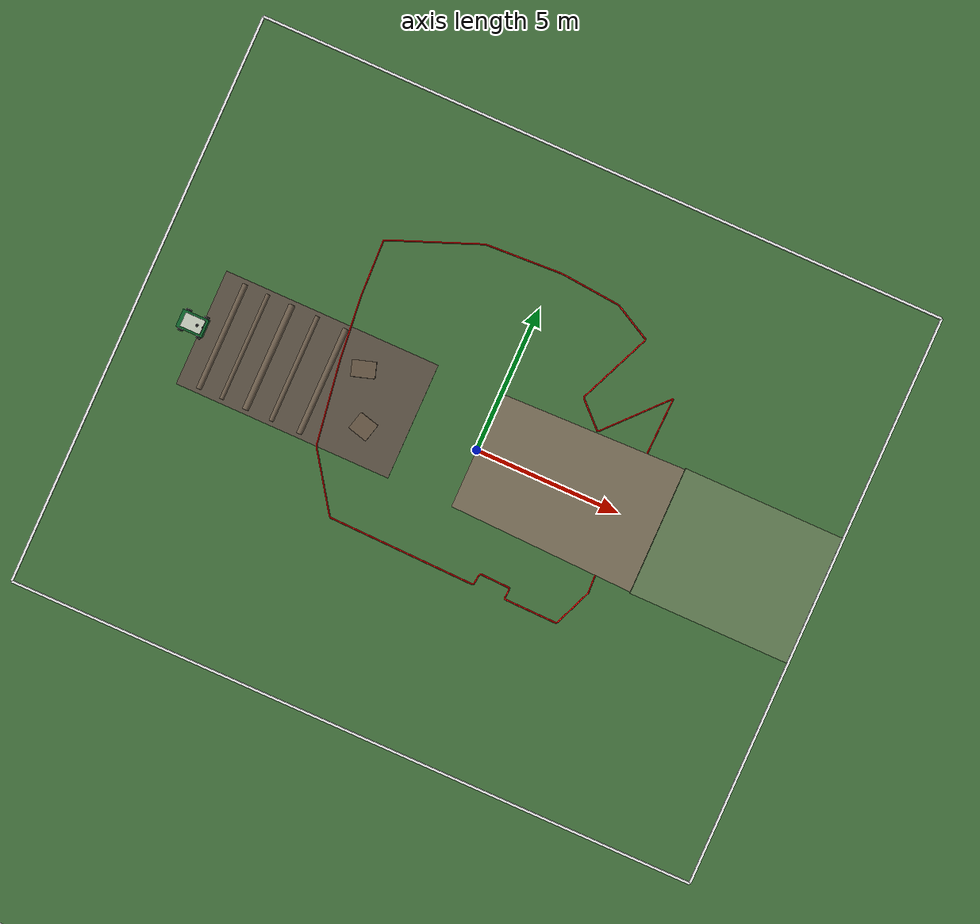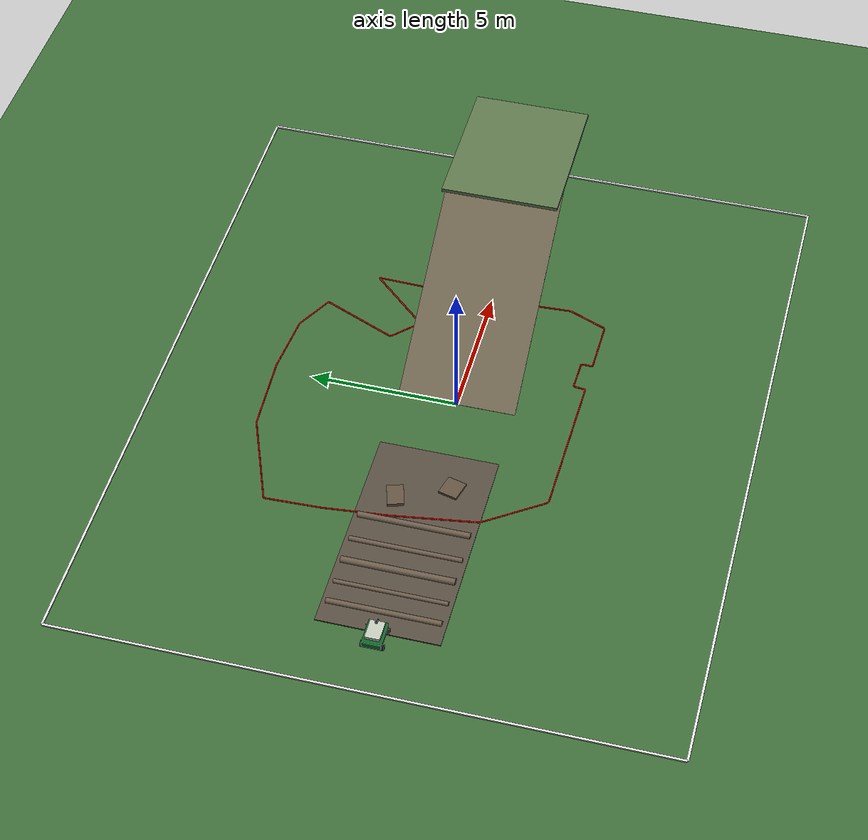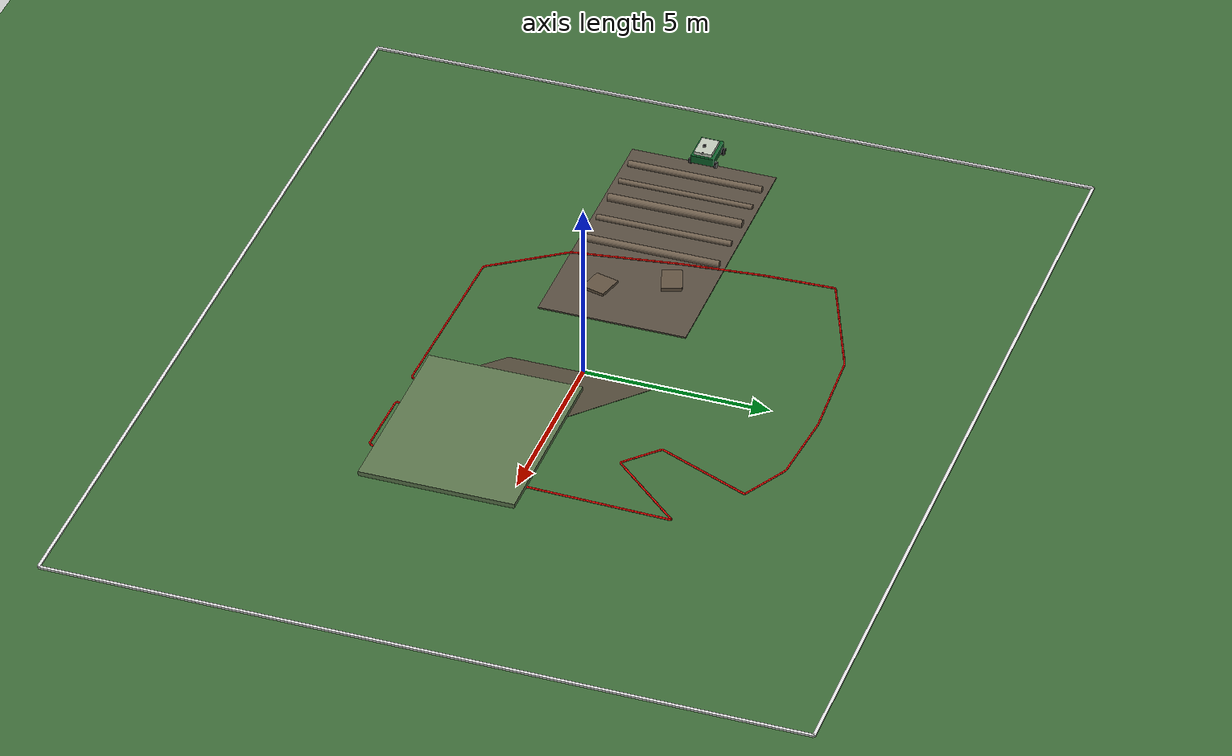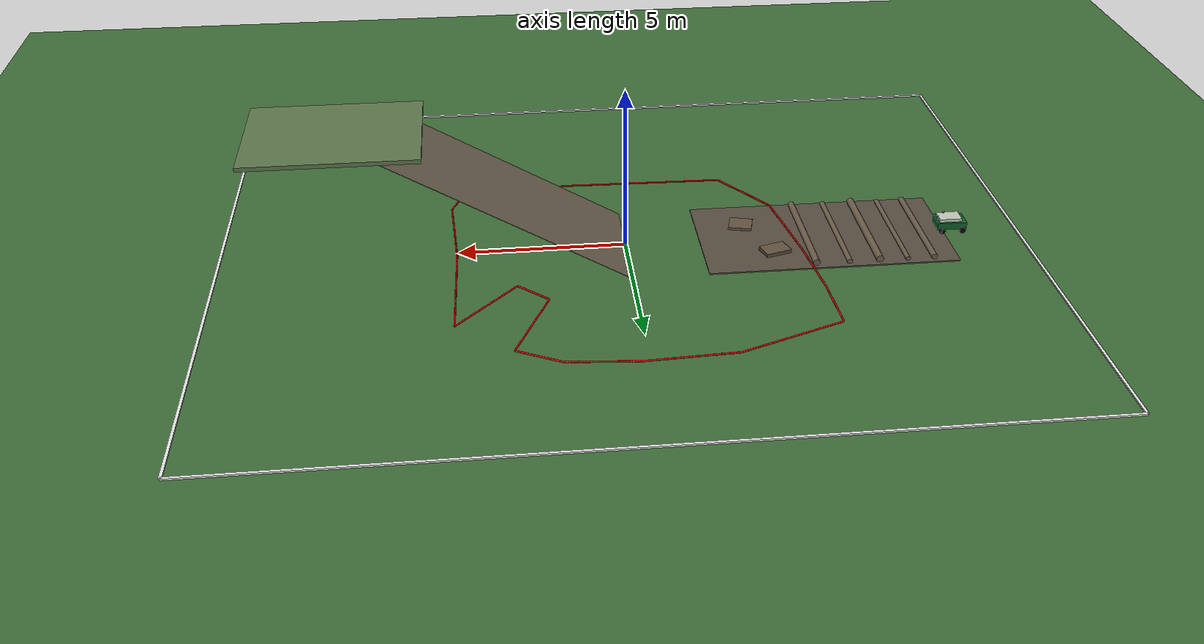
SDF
<?xml version="1.0"?>
<sdf version="1.6">
  <world name="mower_slope_bumpy">
    <gravity>0 0 -9.8</gravity>
    <magnetic_field>6e-06 2.3e-05 -4.2e-05</magnetic_field>
    <atmosphere type="adiabatic"/>

    <physics name="default_physics" default="0" type="ode">
      <max_step_size>0.001</max_step_size>
      <real_time_factor>1.0</real_time_factor>
      <real_time_update_rate>1000</real_time_update_rate>
    </physics>

    <scene>
      <ambient>0.65 0.65 0.65 1</ambient>
      <background>0.85 0.90 0.96 1</background>
      <shadows>true</shadows>
    </scene>

    <light name="sun" type="directional">
      <cast_shadows>true</cast_shadows>
      <pose>0 0 10 0 0 0</pose>
      <diffuse>1.0 1.0 1.0 1</diffuse>
      <specular>0.35 0.35 0.35 1</specular>
      <attenuation>
        <range>1000</range>
        <constant>0.9</constant>
        <linear>0.01</linear>
        <quadratic>0.001</quadratic>
      </attenuation>
      <direction>-0.5 0.1 -0.9</direction>
    </light>

    <model name="ground_plane">
      <static>true</static>
      <link name="link">
        <collision name="collision">
          <geometry>
            <plane>
              <normal>0 0 1</normal>
              <size>50 40</size>
            </plane>
          </geometry>
          <surface>
            <friction>
              <ode>
                <mu>1.2</mu>
                <mu2>1.2</mu2>
              </ode>
            </friction>
          </surface>
        </collision>
        <visual name="visual">
          <geometry>
            <plane>
              <normal>0 0 1</normal>
              <size>50 40</size>
            </plane>
          </geometry>
          <material>
            <ambient>0.24 0.42 0.22 1</ambient>
            <diffuse>0.24 0.42 0.22 1</diffuse>
          </material>
        </visual>
      </link>
    </model>

    <model name="bumpy_road">
      <static>true</static>
      <pose>-6 0 0 0 0 0</pose>
      <link name="road_base">
        <collision name="collision">
          <geometry>
            <box>
              <size>7.5 4.0 0.04</size>
            </box>
          </geometry>
        </collision>
        <visual name="visual">
          <geometry>
            <box>
              <size>7.5 4.0 0.04</size>
            </box>
          </geometry>
          <material>
            <ambient>0.34 0.30 0.25 1</ambient>
            <diffuse>0.34 0.30 0.25 1</diffuse>
          </material>
        </visual>
      </link>
      <link name="bump_01">
        <pose>-3.0 0 0.09 1.570796 0 0</pose>
        <collision name="collision">
          <geometry>
            <cylinder>
              <radius>0.09</radius>
              <length>3.7</length>
            </cylinder>
          </geometry>
        </collision>
        <visual name="visual">
          <geometry>
            <cylinder>
              <radius>0.09</radius>
              <length>3.7</length>
            </cylinder>
          </geometry>
          <material>
            <ambient>0.42 0.36 0.29 1</ambient>
            <diffuse>0.42 0.36 0.29 1</diffuse>
          </material>
        </visual>
      </link>
      <link name="bump_02">
        <pose>-2.2 0 0.07 1.570796 0 0</pose>
        <collision name="collision">
          <geometry>
            <cylinder>
              <radius>0.07</radius>
              <length>3.7</length>
            </cylinder>
          </geometry>
        </collision>
        <visual name="visual">
          <geometry>
            <cylinder>
              <radius>0.07</radius>
              <length>3.7</length>
            </cylinder>
          </geometry>
          <material>
            <ambient>0.42 0.36 0.29 1</ambient>
            <diffuse>0.42 0.36 0.29 1</diffuse>
          </material>
        </visual>
      </link>
      <link name="bump_03">
        <pose>-1.35 0 0.11 1.570796 0 0</pose>
        <collision name="collision">
          <geometry>
            <cylinder>
              <radius>0.11</radius>
              <length>3.7</length>
            </cylinder>
          </geometry>
        </collision>
        <visual name="visual">
          <geometry>
            <cylinder>
              <radius>0.11</radius>
              <length>3.7</length>
            </cylinder>
          </geometry>
          <material>
            <ambient>0.42 0.36 0.29 1</ambient>
            <diffuse>0.42 0.36 0.29 1</diffuse>
          </material>
        </visual>
      </link>
      <link name="bump_04">
        <pose>-0.45 0 0.08 1.570796 0 0</pose>
        <collision name="collision">
          <geometry>
            <cylinder>
              <radius>0.08</radius>
              <length>3.7</length>
            </cylinder>
          </geometry>
        </collision>
        <visual name="visual">
          <geometry>
            <cylinder>
              <radius>0.08</radius>
              <length>3.7</length>
            </cylinder>
          </geometry>
          <material>
            <ambient>0.42 0.36 0.29 1</ambient>
            <diffuse>0.42 0.36 0.29 1</diffuse>
          </material>
        </visual>
      </link>
      <link name="bump_05">
        <pose>0.55 0 0.10 1.570796 0 0</pose>
        <collision name="collision">
          <geometry>
            <cylinder>
              <radius>0.10</radius>
              <length>3.7</length>
            </cylinder>
          </geometry>
        </collision>
        <visual name="visual">
          <geometry>
            <cylinder>
              <radius>0.10</radius>
              <length>3.7</length>
            </cylinder>
          </geometry>
          <material>
            <ambient>0.42 0.36 0.29 1</ambient>
            <diffuse>0.42 0.36 0.29 1</diffuse>
          </material>
        </visual>
      </link>
      <link name="small_uneven_patch_left">
        <pose>1.6 0.9 0.075 0 0 0.3</pose>
        <collision name="collision">
          <geometry>
            <box>
              <size>0.8 0.55 0.11</size>
            </box>
          </geometry>
        </collision>
        <visual name="visual">
          <geometry>
            <box>
              <size>0.8 0.55 0.11</size>
            </box>
          </geometry>
          <material>
            <ambient>0.38 0.32 0.25 1</ambient>
            <diffuse>0.38 0.32 0.25 1</diffuse>
          </material>
        </visual>
      </link>
      <link name="small_uneven_patch_right">
        <pose>2.35 -0.8 0.06 0 0 -0.25</pose>
        <collision name="collision">
          <geometry>
            <box>
              <size>0.7 0.65 0.08</size>
            </box>
          </geometry>
        </collision>
        <visual name="visual">
          <geometry>
            <box>
              <size>0.7 0.65 0.08</size>
            </box>
          </geometry>
          <material>
            <ambient>0.38 0.32 0.25 1</ambient>
            <diffuse>0.38 0.32 0.25 1</diffuse>
          </material>
        </visual>
      </link>
    </model>

    <model name="thirty_degree_slope">
      <static>true</static>
      <pose>3.464 0 1.99 0 -0.523599 0</pose>
      <link name="ramp">
        <collision name="collision">
          <geometry>
            <box>
              <size>8.0 4.0 0.01</size>
            </box>
          </geometry>
          <surface>
            <friction>
              <ode>
                <mu>1.4</mu>
                <mu2>1.4</mu2>
              </ode>
            </friction>
          </surface>
        </collision>
        <visual name="visual">
          <geometry>
            <box>
              <size>8.0 4.0 0.01</size>
            </box>
          </geometry>
          <material>
            <ambient>0.43 0.39 0.31 1</ambient>
            <diffuse>0.43 0.39 0.31 1</diffuse>
          </material>
        </visual>
      </link>
    </model>

    <model name="slope_top_platform">
      <static>true</static>
      <pose>8.3 0 4.05 0 0 0</pose>
      <link name="platform">
        <collision name="collision">
          <geometry>
            <box>
              <size>5.0 4.0 0.12</size>
            </box>
          </geometry>
          <surface>
            <friction>
              <ode>
                <mu>1.4</mu>
                <mu2>1.4</mu2>
              </ode>
            </friction>
          </surface>
        </collision>
        <visual name="visual">
          <geometry>
            <box>
              <size>5.0 4.0 0.12</size>
            </box>
          </geometry>
          <material>
            <ambient>0.36 0.46 0.30 1</ambient>
            <diffuse>0.36 0.46 0.30 1</diffuse>
          </material>
        </visual>
      </link>
    </model>

    <model name="boundary">
      <static>true</static>
      <pose>0 0 0.025 0 0 0</pose>
      <link name="north">
        <pose>0 10 0 0 0 0</pose>
        <collision name="collision">
          <geometry>
            <box>
              <size>24 0.08 0.05</size>
            </box>
          </geometry>
        </collision>
        <visual name="visual">
          <geometry>
            <box>
              <size>24 0.08 0.05</size>
            </box>
          </geometry>
          <material>
            <ambient>0.9 0.9 0.9 1</ambient>
            <diffuse>0.9 0.9 0.9 1</diffuse>
          </material>
        </visual>
      </link>
      <link name="south">
        <pose>0 -10 0 0 0 0</pose>
        <collision name="collision">
          <geometry>
            <box>
              <size>24 0.08 0.05</size>
            </box>
          </geometry>
        </collision>
        <visual name="visual">
          <geometry>
            <box>
              <size>24 0.08 0.05</size>
            </box>
          </geometry>
          <material>
            <ambient>0.9 0.9 0.9 1</ambient>
            <diffuse>0.9 0.9 0.9 1</diffuse>
          </material>
        </visual>
      </link>
      <link name="east">
        <pose>12 0 0 0 0 0</pose>
        <collision name="collision">
          <geometry>
            <box>
              <size>0.08 20 0.05</size>
            </box>
          </geometry>
        </collision>
        <visual name="visual">
          <geometry>
            <box>
              <size>0.08 20 0.05</size>
            </box>
          </geometry>
          <material>
            <ambient>0.9 0.9 0.9 1</ambient>
            <diffuse>0.9 0.9 0.9 1</diffuse>
          </material>
        </visual>
      </link>
      <link name="west">
        <pose>-12 0 0 0 0 0</pose>
        <collision name="collision">
          <geometry>
            <box>
              <size>0.08 20 0.05</size>
            </box>
          </geometry>
        </collision>
        <visual name="visual">
          <geometry>
            <box>
              <size>0.08 20 0.05</size>
            </box>
          </geometry>
          <material>
            <ambient>0.9 0.9 0.9 1</ambient>
            <diffuse>0.9 0.9 0.9 1</diffuse>
          </material>
        </visual>
      </link>
    </model>

    <include>
      <uri>model://boundary_points</uri>
      <pose>0 0 0 0 0 0</pose>
    </include>

    <include>
      <uri>model://mower_robot</uri>
      <pose>-10 0 0.14 0 0 0</pose>
    </include>
  </world>
</sdf>

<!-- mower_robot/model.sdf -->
<sdf version="1.6">
  <model name="mower_robot">
    <pose>0 0 0 0 0 0</pose>

    <link name="base_link">
      <inertial>
        <pose>-0.15 0 0 0 0 0</pose>
        <mass>20.0</mass>
        <inertia>
          <ixx>1.10</ixx>
          <ixy>0.0</ixy>
          <ixz>0.0</ixz>
          <iyy>1.65</iyy>
          <iyz>0.0</iyz>
          <izz>2.05</izz>
        </inertia>
      </inertial>
      <collision name="body_collision">
        <pose>0 0 0.08 0 0 0</pose>
        <geometry>
          <box>
            <size>0.9 0.62 0.22</size>
          </box>
        </geometry>
        <surface>
          <friction>
            <ode>
              <mu>0.8</mu>
              <mu2>0.8</mu2>
            </ode>
          </friction>
        </surface>
      </collision>
      <visual name="body_visual">
        <pose>0 0 0.08 0 0 0</pose>
        <geometry>
          <box>
            <size>0.9 0.62 0.22</size>
          </box>
        </geometry>
        <material>
          <ambient>0.05 0.28 0.12 1</ambient>
          <diffuse>0.05 0.38 0.16 1</diffuse>
          <specular>0.08 0.08 0.08 1</specular>
        </material>
      </visual>
      <visual name="top_cover">
        <pose>0.04 0 0.24 0 0 0</pose>
        <geometry>
          <box>
            <size>0.68 0.48 0.10</size>
          </box>
        </geometry>
        <material>
          <ambient>0.75 0.78 0.72 1</ambient>
          <diffuse>0.75 0.78 0.72 1</diffuse>
        </material>
      </visual>
      <visual name="cutting_disc">
        <pose>-0.05 0 -0.045 0 0 0</pose>
        <geometry>
          <cylinder>
            <radius>0.24</radius>
            <length>0.025</length>
          </cylinder>
        </geometry>
        <material>
          <ambient>0.14 0.14 0.14 1</ambient>
          <diffuse>0.16 0.16 0.16 1</diffuse>
        </material>
      </visual>
    </link>

    <link name="front_left_caster_yoke">
      <pose>0.36 0.34 -0.04 0 0 0</pose>
      <inertial>
        <mass>0.4</mass>
        <inertia>
          <ixx>0.001</ixx>
          <ixy>0.0</ixy>
          <ixz>0.0</ixz>
          <iyy>0.001</iyy>
          <iyz>0.0</iyz>
          <izz>0.001</izz>
        </inertia>
      </inertial>
      <visual name="fork_visual">
        <pose>0 0 0 0 0 0</pose>
        <geometry>
          <box>
            <size>0.06 0.10 0.12</size>
          </box>
        </geometry>
        <material>
          <ambient>0.18 0.18 0.18 1</ambient>
          <diffuse>0.22 0.22 0.22 1</diffuse>
        </material>
      </visual>
    </link>

    <link name="front_left_caster_wheel">
      <pose>0.30 0.34 -0.055 0 0 0</pose>
      <inertial>
        <mass>0.8</mass>
        <inertia>
          <ixx>0.004</ixx>
          <ixy>0.0</ixy>
          <ixz>0.0</ixz>
          <iyy>0.004</iyy>
          <iyz>0.0</iyz>
          <izz>0.007</izz>
        </inertia>
      </inertial>
      <collision name="collision">
        <pose>0 0 0 -1.5708 0 0</pose>
        <geometry>
          <cylinder>
            <radius>0.085</radius>
            <length>0.06</length>
          </cylinder>
        </geometry>
        <surface>
          <friction>
            <ode>
              <mu>1.0</mu>
              <mu2>1.0</mu2>
              <slip1>0.3</slip1>
              <slip2>0.3</slip2>
            </ode>
          </friction>
        </surface>
      </collision>
      <visual name="visual">
        <pose>0 0 0 -1.5708 0 0</pose>
        <geometry>
          <cylinder>
            <radius>0.085</radius>
            <length>0.06</length>
          </cylinder>
        </geometry>
        <material>
          <ambient>0.02 0.02 0.02 1</ambient>
          <diffuse>0.02 0.02 0.02 1</diffuse>
        </material>
      </visual>
    </link>

    <link name="front_right_caster_yoke">
      <pose>0.36 -0.34 -0.04 0 0 0</pose>
      <inertial>
        <mass>0.4</mass>
        <inertia>
          <ixx>0.001</ixx>
          <ixy>0.0</ixy>
          <ixz>0.0</ixz>
          <iyy>0.001</iyy>
          <iyz>0.0</iyz>
          <izz>0.001</izz>
        </inertia>
      </inertial>
      <visual name="fork_visual">
        <pose>0 0 0 0 0 0</pose>
        <geometry>
          <box>
            <size>0.06 0.10 0.12</size>
          </box>
        </geometry>
        <material>
          <ambient>0.18 0.18 0.18 1</ambient>
          <diffuse>0.22 0.22 0.22 1</diffuse>
        </material>
      </visual>
    </link>

    <link name="front_right_caster_wheel">
      <pose>0.30 -0.34 -0.055 0 0 0</pose>
      <inertial>
        <mass>0.8</mass>
        <inertia>
          <ixx>0.004</ixx>
          <ixy>0.0</ixy>
          <ixz>0.0</ixz>
          <iyy>0.004</iyy>
          <iyz>0.0</iyz>
          <izz>0.007</izz>
        </inertia>
      </inertial>
      <collision name="collision">
        <pose>0 0 0 -1.5708 0 0</pose>
        <geometry>
          <cylinder>
            <radius>0.085</radius>
            <length>0.06</length>
          </cylinder>
        </geometry>
        <surface>
          <friction>
            <ode>
              <mu>1.0</mu>
              <mu2>1.0</mu2>
              <slip1>0.3</slip1>
              <slip2>0.3</slip2>
            </ode>
          </friction>
        </surface>
      </collision>
      <visual name="visual">
        <pose>0 0 0 -1.5708 0 0</pose>
        <geometry>
          <cylinder>
            <radius>0.085</radius>
            <length>0.06</length>
          </cylinder>
        </geometry>
        <material>
          <ambient>0.02 0.02 0.02 1</ambient>
          <diffuse>0.02 0.02 0.02 1</diffuse>
        </material>
      </visual>
    </link>

    <link name="rear_left_wheel">
      <pose>-0.32 0.34 -0.04 -1.5708 0 0</pose>
      <inertial>
        <mass>1.2</mass>
        <inertia>
          <ixx>0.006</ixx>
          <ixy>0.0</ixy>
          <ixz>0.0</ixz>
          <iyy>0.006</iyy>
          <iyz>0.0</iyz>
          <izz>0.010</izz>
        </inertia>
      </inertial>
      <collision name="collision">
        <geometry>
          <cylinder>
            <radius>0.10</radius>
            <length>0.08</length>
          </cylinder>
        </geometry>
        <surface>
          <friction>
            <ode>
              <mu>1.0</mu>
              <mu2>1.0</mu2>
              <slip1>0.01</slip1>
              <slip2>0.01</slip2>
            </ode>
          </friction>
        </surface>
      </collision>
      <visual name="visual">
        <geometry>
          <cylinder>
            <radius>0.10</radius>
            <length>0.08</length>
          </cylinder>
        </geometry>
        <material>
          <ambient>0.02 0.02 0.02 1</ambient>
          <diffuse>0.02 0.02 0.02 1</diffuse>
        </material>
      </visual>
    </link>

    <link name="rear_right_wheel">
      <pose>-0.32 -0.34 -0.04 -1.5708 0 0</pose>
      <inertial>
        <mass>1.2</mass>
        <inertia>
          <ixx>0.006</ixx>
          <ixy>0.0</ixy>
          <ixz>0.0</ixz>
          <iyy>0.006</iyy>
          <iyz>0.0</iyz>
          <izz>0.010</izz>
        </inertia>
      </inertial>
      <collision name="collision">
        <geometry>
          <cylinder>
            <radius>0.10</radius>
            <length>0.08</length>
          </cylinder>
        </geometry>
        <surface>
          <friction>
            <ode>
              <mu>1.0</mu>
              <mu2>1.0</mu2>
              <slip1>0.01</slip1>
              <slip2>0.01</slip2>
            </ode>
          </friction>
        </surface>
      </collision>
      <visual name="visual">
        <geometry>
          <cylinder>
            <radius>0.10</radius>
            <length>0.08</length>
          </cylinder>
        </geometry>
        <material>
          <ambient>0.02 0.02 0.02 1</ambient>
          <diffuse>0.02 0.02 0.02 1</diffuse>
        </material>
      </visual>
    </link>

    <link name="camera_link">
      <pose>0.40 0.0 0.30 0 0 0</pose>
      <inertial>
        <mass>0.08</mass>
        <inertia>
          <ixx>0.0002</ixx>
          <ixy>0.0</ixy>
          <ixz>0.0</ixz>
          <iyy>0.0002</iyy>
          <iyz>0.0</iyz>
          <izz>0.0002</izz>
        </inertia>
      </inertial>
      <visual name="camera_housing">
        <geometry>
          <box>
            <size>0.05 0.04 0.03</size>
          </box>
        </geometry>
        <material>
          <ambient>0.10 0.10 0.10 1</ambient>
          <diffuse>0.12 0.12 0.12 1</diffuse>
        </material>
      </visual>
      <sensor type="ray" name="front_tof">
        <always_on>true</always_on>
        <update_rate>20</update_rate>
        <visualize>false</visualize>
        <ray>
          <scan>
            <horizontal>
              <samples>100</samples>
              <resolution>1.0</resolution>
              <min_angle>-0.785</min_angle>
              <max_angle>0.785</max_angle>
            </horizontal>
            <vertical>
              <samples>80</samples>
              <resolution>1.0</resolution>
              <min_angle>-0.611</min_angle>
              <max_angle>0.611</max_angle>
            </vertical>
          </scan>
          <range>
            <min>0.05</min>
            <max>2.5</max>
            <resolution>0.05</resolution>
          </range>
          <noise>
            <type>gaussian</type>
            <mean>0.0</mean>
            <stddev>0.01</stddev>
          </noise>
        </ray>
        <plugin name="front_tof_controller" filename="libgazebo_ros_ray_sensor.so">
          <ros>
            <namespace>/mower_tof</namespace>
            <remapping>~/out:=points</remapping>
          </ros>
          <output_type>sensor_msgs/PointCloud2</output_type>
          <frame_name>camera_link</frame_name>
        </plugin>
      </sensor>
      <sensor type="camera" name="front_camera">
        <always_on>false</always_on>
        <update_rate>15</update_rate>
        <visualize>false</visualize>
        <camera name="front_camera_sensor">
          <horizontal_fov>1.5708</horizontal_fov>
          <vertical_fov>1.22173</vertical_fov>
          <image>
            <width>640</width>
            <height>480</height>
            <format>R8G8B8</format>
          </image>
          <clip>
            <near>0.05</near>
            <far>30.0</far>
          </clip>
          <noise>
            <type>gaussian</type>
            <mean>0.0</mean>
            <stddev>0.002</stddev>
          </noise>
        </camera>
        <plugin name="front_camera_controller" filename="libgazebo_ros_camera.so">
          <ros>
            <namespace>/mower_camera</namespace>
            <remapping>image_raw:=image_raw</remapping>
            <remapping>camera_info:=camera_info</remapping>
          </ros>
          <frame_name>camera_link</frame_name>
        </plugin>
      </sensor>
    </link>

    <link name="lidar_link">
      <pose>0.23 0.0 0.42 0 0.0872665 0</pose>
      <inertial>
        <mass>0.18</mass>
        <inertia>
          <ixx>0.0003</ixx>
          <ixy>0.0</ixy>
          <ixz>0.0</ixz>
          <iyy>0.0003</iyy>
          <iyz>0.0</iyz>
          <izz>0.0003</izz>
        </inertia>
      </inertial>
      <visual name="lidar_housing">
        <geometry>
          <cylinder>
            <radius>0.045</radius>
            <length>0.04</length>
          </cylinder>
        </geometry>
        <material>
          <ambient>0.02 0.02 0.02 1</ambient>
          <diffuse>0.03 0.03 0.03 1</diffuse>
        </material>
      </visual>
      <sensor type="ray" name="front_lidar">
        <always_on>true</always_on>
        <update_rate>10</update_rate>
        <visualize>false</visualize>
        <ray>
          <scan>
            <horizontal>
              <samples>720</samples>
              <resolution>1.0</resolution>
              <min_angle>-3.14159</min_angle>
              <max_angle>3.14159</max_angle>
            </horizontal>
            <vertical>
              <samples>16</samples>
              <resolution>1.0</resolution>
              <min_angle>0.0</min_angle>
              <max_angle>0.3</max_angle>
            </vertical>
          </scan>
          <range>
            <min>0.10</min>
            <max>12.0</max>
            <resolution>0.01</resolution>
          </range>
          <noise>
            <type>gaussian</type>
            <mean>0.0</mean>
            <stddev>0.01</stddev>
          </noise>
        </ray>
        <plugin name="front_lidar_controller" filename="libgazebo_ros_ray_sensor.so">
          <ros>
            <namespace>/</namespace>
            <remapping>~/out:=sensor_lidar</remapping>
          </ros>
          <output_type>sensor_msgs/PointCloud2</output_type>
          <frame_name>lidar_link</frame_name>
        </plugin>
      </sensor>
    </link>

    <joint name="front_left_caster_swivel_joint" type="revolute">
      <parent>base_link</parent>
      <child>front_left_caster_yoke</child>
      <axis>
        <xyz>0 0 1</xyz>
        <limit>
          <lower>-1e16</lower>
          <upper>1e16</upper>
        </limit>
        <dynamics>
          <damping>0.005</damping>
          <friction>0.0</friction>
        </dynamics>
      </axis>
    </joint>

    <joint name="front_left_caster_wheel_joint" type="revolute">
      <parent>front_left_caster_yoke</parent>
      <child>front_left_caster_wheel</child>
      <axis>
        <xyz>0 1 0</xyz>
        <limit>
          <lower>-1e16</lower>
          <upper>1e16</upper>
        </limit>
        <dynamics>
          <damping>0.01</damping>
          <friction>0.0</friction>
        </dynamics>
      </axis>
    </joint>

    <joint name="front_right_caster_swivel_joint" type="revolute">
      <parent>base_link</parent>
      <child>front_right_caster_yoke</child>
      <axis>
        <xyz>0 0 1</xyz>
        <limit>
          <lower>-1e16</lower>
          <upper>1e16</upper>
        </limit>
        <dynamics>
          <damping>0.005</damping>
          <friction>0.0</friction>
        </dynamics>
      </axis>
    </joint>

    <joint name="front_right_caster_wheel_joint" type="revolute">
      <parent>front_right_caster_yoke</parent>
      <child>front_right_caster_wheel</child>
      <axis>
        <xyz>0 1 0</xyz>
        <limit>
          <lower>-1e16</lower>
          <upper>1e16</upper>
        </limit>
        <dynamics>
          <damping>0.01</damping>
          <friction>0.0</friction>
        </dynamics>
      </axis>
    </joint>

    <joint name="rear_left_wheel_joint" type="revolute">
      <parent>base_link</parent>
      <child>rear_left_wheel</child>
      <axis>
        <xyz>0 0 1</xyz>
        <limit>
          <lower>-1e16</lower>
          <upper>1e16</upper>
        </limit>
      </axis>
    </joint>
    <joint name="rear_right_wheel_joint" type="revolute">
      <parent>base_link</parent>
      <child>rear_right_wheel</child>
      <axis>
        <xyz>0 0 1</xyz>
        <limit>
          <lower>-1e16</lower>
          <upper>1e16</upper>
        </limit>
      </axis>
    </joint>

    <joint name="camera_joint" type="fixed">
      <parent>base_link</parent>
      <child>camera_link</child>
    </joint>

    <joint name="lidar_joint" type="fixed">
      <parent>base_link</parent>
      <child>lidar_link</child>
    </joint>

    <plugin name="diff_drive" filename="libgazebo_ros_diff_drive.so">
      <ros>
        <namespace>/</namespace>
        <remapping>cmd_vel:=cmd_vel</remapping>
        <remapping>odom:=odom</remapping>
      </ros>

      <left_joint>rear_left_wheel_joint</left_joint>
      <right_joint>rear_right_wheel_joint</right_joint>

      <wheel_separation>0.68</wheel_separation>
      <wheel_diameter>0.20</wheel_diameter>

      <max_wheel_torque>6.0</max_wheel_torque>
      <max_wheel_acceleration>2.0</max_wheel_acceleration>

      <publish_odom>true</publish_odom>
      <publish_odom_tf>true</publish_odom_tf>
      <publish_wheel_tf>true</publish_wheel_tf>

      <odometry_frame>odom</odometry_frame>
      <robot_base_frame>base_link</robot_base_frame>
    </plugin>
  </model>
</sdf>
